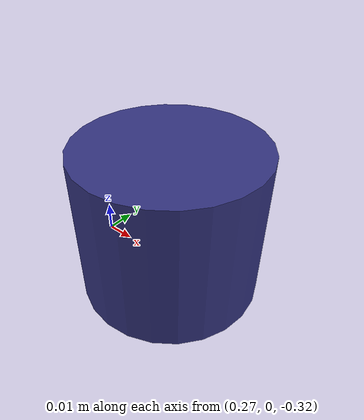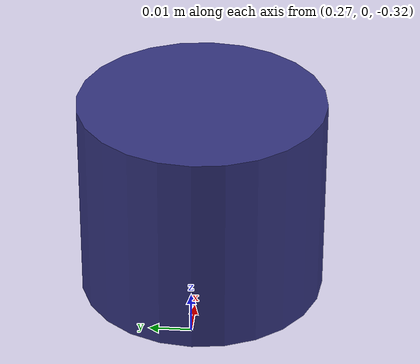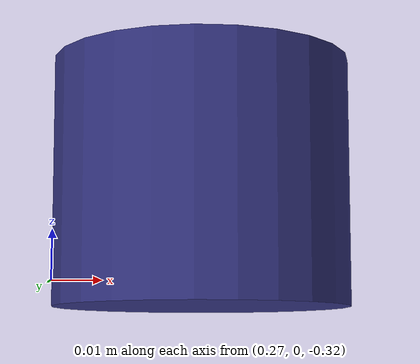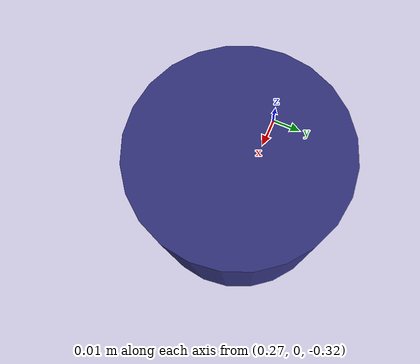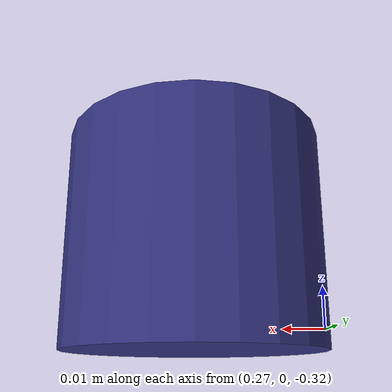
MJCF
<mujoco model="joint example">
    <worldbody>
        <light pos="0 0 1"/>
        <geom type="plane" size="1 1 0.1" rgba="0 .9 0 1"/>

        <body>
            <joint axis="0 0 1" pos="0 0 .025" type="slide"/>
            <geom type="cylinder" size=".03 .025" density="5000" pos="0.3 0 -0.3" rgba=".2 .2 .5 1"/>
        </body>
    </worldbody>

</mujoco>
